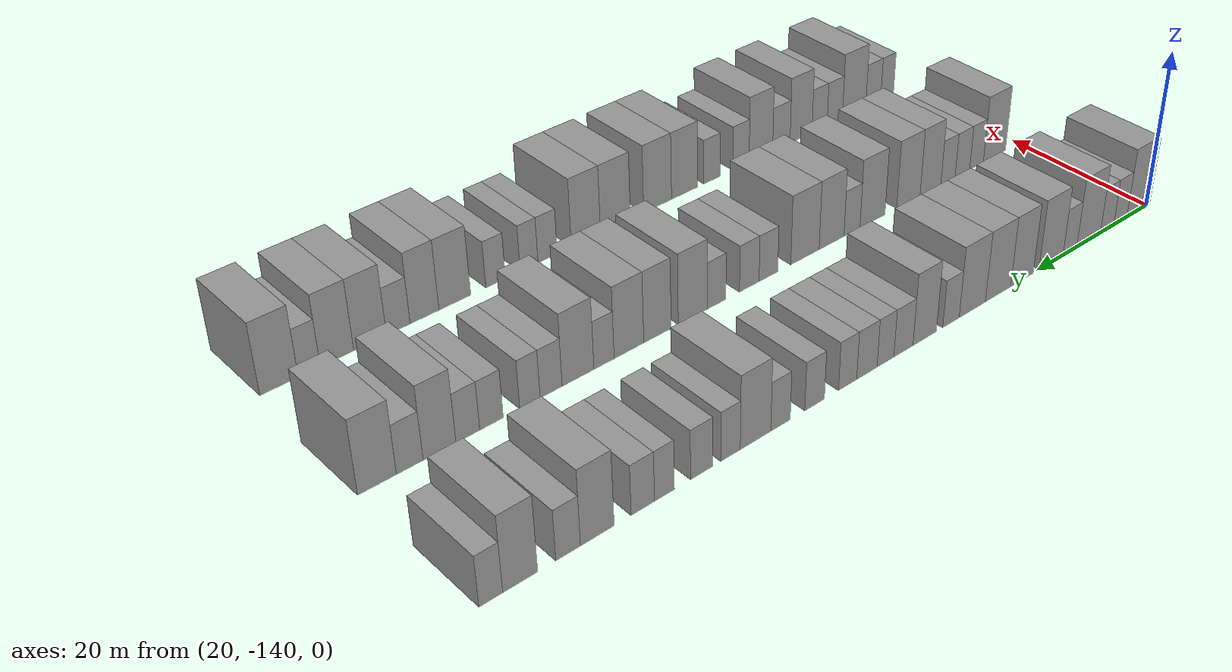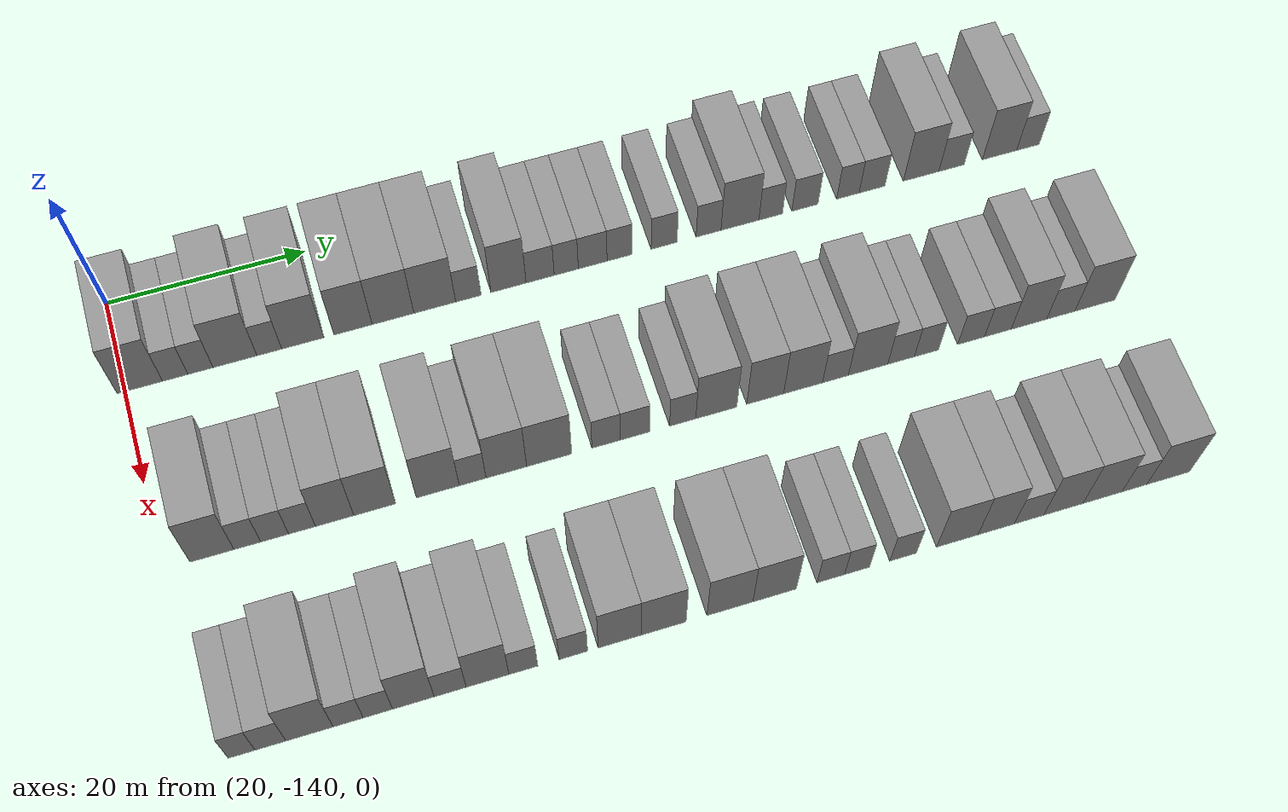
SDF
<sdf version="1.6">
 <world name="default">
  <model name="building_24">
   <static>1</static>
   <pose>25.0000 -138.5390 0 0.000000 0.000000 0.000000</pose>
   <link name="link">
    <pose>0 0 4.50 0 0 0</pose>
    <collision name="collision"><geometry><box><size>10.0000 4.4466 9.0000</size></box></geometry></collision>
    <visual name="visual">
     <cast_shadows>0</cast_shadows>
     <geometry><box><size>10.0000 4.4466 9.0000</size></box></geometry>
     <material>
      <script>
       <uri>model://grey_wall/materials/scripts</uri>
       <uri>model://grey_wall/materials/textures</uri>
       <name>vrc/grey_wall</name>
      </script>
     </material>
    </visual>
   </link>
  </model>
  <model name="building_25">
   <static>1</static>
   <pose>25.0000 -135.0715 0 0.000000 0.000000 0.000000</pose>
   <link name="link">
    <pose>0 0 3.00 0 0 0</pose>
    <collision name="collision"><geometry><box><size>10.0000 2.4883 6.0000</size></box></geometry></collision>
    <visual name="visual">
     <cast_shadows>0</cast_shadows>
     <geometry><box><size>10.0000 2.4883 6.0000</size></box></geometry>
     <material>
      <script>
       <uri>model://grey_wall/materials/scripts</uri>
       <uri>model://grey_wall/materials/textures</uri>
       <name>vrc/grey_wall</name>
      </script>
     </material>
    </visual>
   </link>
  </model>
  <model name="building_26">
   <static>1</static>
   <pose>25.0000 -132.5944 0 0.000000 0.000000 0.000000</pose>
   <link name="link">
    <pose>0 0 3.00 0 0 0</pose>
    <collision name="collision"><geometry><box><size>10.0000 2.4660 6.0000</size></box></geometry></collision>
    <visual name="visual">
     <cast_shadows>0</cast_shadows>
     <geometry><box><size>10.0000 2.4660 6.0000</size></box></geometry>
     <material>
      <script>
       <uri>model://grey_wall/materials/scripts</uri>
       <uri>model://grey_wall/materials/textures</uri>
       <name>vrc/grey_wall</name>
      </script>
     </material>
    </visual>
   </link>
  </model>
  <model name="building_27">
   <static>1</static>
   <pose>25.0000 -129.1966 0 0.000000 0.000000 0.000000</pose>
   <link name="link">
    <pose>0 0 4.50 0 0 0</pose>
    <collision name="collision"><geometry><box><size>10.0000 4.3295 9.0000</size></box></geometry></collision>
    <visual name="visual">
     <cast_shadows>0</cast_shadows>
     <geometry><box><size>10.0000 4.3295 9.0000</size></box></geometry>
     <material>
      <script>
       <uri>model://grey_wall/materials/scripts</uri>
       <uri>model://grey_wall/materials/textures</uri>
       <name>vrc/grey_wall</name>
      </script>
     </material>
    </visual>
   </link>
  </model>
  <model name="building_28">
   <static>1</static>
   <pose>25.0000 -125.7980 0 0.000000 0.000000 0.000000</pose>
   <link name="link">
    <pose>0 0 3.00 0 0 0</pose>
    <collision name="collision"><geometry><box><size>10.0000 2.4677 6.0000</size></box></geometry></collision>
    <visual name="visual">
     <cast_shadows>0</cast_shadows>
     <geometry><box><size>10.0000 2.4677 6.0000</size></box></geometry>
     <material>
      <script>
       <uri>model://grey_wall/materials/scripts</uri>
       <uri>model://grey_wall/materials/textures</uri>
       <name>vrc/grey_wall</name>
      </script>
     </material>
    </visual>
   </link>
  </model>
  <model name="building_29">
   <static>1</static>
   <pose>25.0000 -122.4533 0 0.000000 0.000000 0.000000</pose>
   <link name="link">
    <pose>0 0 4.50 0 0 0</pose>
    <collision name="collision"><geometry><box><size>10.0000 4.2217 9.0000</size></box></geometry></collision>
    <visual name="visual">
     <cast_shadows>0</cast_shadows>
     <geometry><box><size>10.0000 4.2217 9.0000</size></box></geometry>
     <material>
      <script>
       <uri>model://grey_wall/materials/scripts</uri>
       <uri>model://grey_wall/materials/textures</uri>
       <name>vrc/grey_wall</name>
      </script>
     </material>
    </visual>
   </link>
  </model>
  <model name="building_30">
   <static>1</static>
   <pose>25.0000 -117.4191 0 0.000000 0.000000 0.000000</pose>
   <link name="link">
    <pose>0 0 4.50 0 0 0</pose>
    <collision name="collision"><geometry><box><size>10.0000 3.8467 9.0000</size></box></geometry></collision>
    <visual name="visual">
     <cast_shadows>0</cast_shadows>
     <geometry><box><size>10.0000 3.8467 9.0000</size></box></geometry>
     <material>
      <script>
       <uri>model://grey_wall/materials/scripts</uri>
       <uri>model://grey_wall/materials/textures</uri>
       <name>vrc/grey_wall</name>
      </script>
     </material>
    </visual>
   </link>
  </model>
  <model name="building_31">
   <static>1</static>
   <pose>25.0000 -113.3922 0 0.000000 0.000000 0.000000</pose>
   <link name="link">
    <pose>0 0 4.50 0 0 0</pose>
    <collision name="collision"><geometry><box><size>10.0000 4.2071 9.0000</size></box></geometry></collision>
    <visual name="visual">
     <cast_shadows>0</cast_shadows>
     <geometry><box><size>10.0000 4.2071 9.0000</size></box></geometry>
     <material>
      <script>
       <uri>model://grey_wall/materials/scripts</uri>
       <uri>model://grey_wall/materials/textures</uri>
       <name>vrc/grey_wall</name>
      </script>
     </material>
    </visual>
   </link>
  </model>
  <model name="building_32">
   <static>1</static>
   <pose>25.0000 -109.1621 0 0.000000 0.000000 0.000000</pose>
   <link name="link">
    <pose>0 0 4.50 0 0 0</pose>
    <collision name="collision"><geometry><box><size>10.0000 4.2531 9.0000</size></box></geometry></collision>
    <visual name="visual">
     <cast_shadows>0</cast_shadows>
     <geometry><box><size>10.0000 4.2531 9.0000</size></box></geometry>
     <material>
      <script>
       <uri>model://grey_wall/materials/scripts</uri>
       <uri>model://grey_wall/materials/textures</uri>
       <name>vrc/grey_wall</name>
      </script>
     </material>
    </visual>
   </link>
  </model>
  <model name="building_33">
   <static>1</static>
   <pose>25.0000 -105.7331 0 0.000000 0.000000 0.000000</pose>
   <link name="link">
    <pose>0 0 3.00 0 0 0</pose>
    <collision name="collision"><geometry><box><size>10.0000 2.6048 6.0000</size></box></geometry></collision>
    <visual name="visual">
     <cast_shadows>0</cast_shadows>
     <geometry><box><size>10.0000 2.6048 6.0000</size></box></geometry>
     <material>
      <script>
       <uri>model://grey_wall/materials/scripts</uri>
       <uri>model://grey_wall/materials/textures</uri>
       <name>vrc/grey_wall</name>
      </script>
     </material>
    </visual>
   </link>
  </model>
  <model name="building_34">
   <static>1</static>
   <pose>25.0000 -101.6226 0 0.000000 0.000000 0.000000</pose>
   <link name="link">
    <pose>0 0 4.50 0 0 0</pose>
    <collision name="collision"><geometry><box><size>10.0000 3.6163 9.0000</size></box></geometry></collision>
    <visual name="visual">
     <cast_shadows>0</cast_shadows>
     <geometry><box><size>10.0000 3.6163 9.0000</size></box></geometry>
     <material>
      <script>
       <uri>model://grey_wall/materials/scripts</uri>
       <uri>model://grey_wall/materials/textures</uri>
       <name>vrc/grey_wall</name>
      </script>
     </material>
    </visual>
   </link>
  </model>
  <model name="building_35">
   <static>1</static>
   <pose>25.0000 -98.3615 0 0.000000 0.000000 0.000000</pose>
   <link name="link">
    <pose>0 0 3.00 0 0 0</pose>
    <collision name="collision"><geometry><box><size>10.0000 2.9057 6.0000</size></box></geometry></collision>
    <visual name="visual">
     <cast_shadows>0</cast_shadows>
     <geometry><box><size>10.0000 2.9057 6.0000</size></box></geometry>
     <material>
      <script>
       <uri>model://grey_wall/materials/scripts</uri>
       <uri>model://grey_wall/materials/textures</uri>
       <name>vrc/grey_wall</name>
      </script>
     </material>
    </visual>
   </link>
  </model>
  <model name="building_36">
   <static>1</static>
   <pose>25.0000 -95.6596 0 0.000000 0.000000 0.000000</pose>
   <link name="link">
    <pose>0 0 3.00 0 0 0</pose>
    <collision name="collision"><geometry><box><size>10.0000 2.4982 6.0000</size></box></geometry></collision>
    <visual name="visual">
     <cast_shadows>0</cast_shadows>
     <geometry><box><size>10.0000 2.4982 6.0000</size></box></geometry>
     <material>
      <script>
       <uri>model://grey_wall/materials/scripts</uri>
       <uri>model://grey_wall/materials/textures</uri>
       <name>vrc/grey_wall</name>
      </script>
     </material>
    </visual>
   </link>
  </model>
  <model name="building_37">
   <static>1</static>
   <pose>25.0000 -92.9173 0 0.000000 0.000000 0.000000</pose>
   <link name="link">
    <pose>0 0 3.00 0 0 0</pose>
    <collision name="collision"><geometry><box><size>10.0000 2.9864 6.0000</size></box></geometry></collision>
    <visual name="visual">
     <cast_shadows>0</cast_shadows>
     <geometry><box><size>10.0000 2.9864 6.0000</size></box></geometry>
     <material>
      <script>
       <uri>model://grey_wall/materials/scripts</uri>
       <uri>model://grey_wall/materials/textures</uri>
       <name>vrc/grey_wall</name>
      </script>
     </material>
    </visual>
   </link>
  </model>
  <model name="building_38">
   <static>1</static>
   <pose>25.0000 -90.1191 0 0.000000 0.000000 0.000000</pose>
   <link name="link">
    <pose>0 0 3.00 0 0 0</pose>
    <collision name="collision"><geometry><box><size>10.0000 2.6099 6.0000</size></box></geometry></collision>
    <visual name="visual">
     <cast_shadows>0</cast_shadows>
     <geometry><box><size>10.0000 2.6099 6.0000</size></box></geometry>
     <material>
      <script>
       <uri>model://grey_wall/materials/scripts</uri>
       <uri>model://grey_wall/materials/textures</uri>
       <name>vrc/grey_wall</name>
      </script>
     </material>
    </visual>
   </link>
  </model>
  <model name="building_39">
   <static>1</static>
   <pose>25.0000 -85.4486 0 0.000000 0.000000 0.000000</pose>
   <link name="link">
    <pose>0 0 3.00 0 0 0</pose>
    <collision name="collision"><geometry><box><size>10.0000 2.7311 6.0000</size></box></geometry></collision>
    <visual name="visual">
     <cast_shadows>0</cast_shadows>
     <geometry><box><size>10.0000 2.7311 6.0000</size></box></geometry>
     <material>
      <script>
       <uri>model://grey_wall/materials/scripts</uri>
       <uri>model://grey_wall/materials/textures</uri>
       <name>vrc/grey_wall</name>
      </script>
     </material>
    </visual>
   </link>
  </model>
  <model name="building_40">
   <static>1</static>
   <pose>25.0000 -80.7686 0 0.000000 0.000000 0.000000</pose>
   <link name="link">
    <pose>0 0 3.00 0 0 0</pose>
    <collision name="collision"><geometry><box><size>10.0000 2.6290 6.0000</size></box></geometry></collision>
    <visual name="visual">
     <cast_shadows>0</cast_shadows>
     <geometry><box><size>10.0000 2.6290 6.0000</size></box></geometry>
     <material>
      <script>
       <uri>model://grey_wall/materials/scripts</uri>
       <uri>model://grey_wall/materials/textures</uri>
       <name>vrc/grey_wall</name>
      </script>
     </material>
    </visual>
   </link>
  </model>
  <model name="building_41">
   <static>1</static>
   <pose>25.0000 -77.4401 0 0.000000 0.000000 0.000000</pose>
   <link name="link">
    <pose>0 0 4.50 0 0 0</pose>
    <collision name="collision"><geometry><box><size>10.0000 4.0280 9.0000</size></box></geometry></collision>
    <visual name="visual">
     <cast_shadows>0</cast_shadows>
     <geometry><box><size>10.0000 4.0280 9.0000</size></box></geometry>
     <material>
      <script>
       <uri>model://grey_wall/materials/scripts</uri>
       <uri>model://grey_wall/materials/textures</uri>
       <name>vrc/grey_wall</name>
      </script>
     </material>
    </visual>
   </link>
  </model>
  <model name="building_42">
   <static>1</static>
   <pose>25.0000 -74.1656 0 0.000000 0.000000 0.000000</pose>
   <link name="link">
    <pose>0 0 3.00 0 0 0</pose>
    <collision name="collision"><geometry><box><size>10.0000 2.5212 6.0000</size></box></geometry></collision>
    <visual name="visual">
     <cast_shadows>0</cast_shadows>
     <geometry><box><size>10.0000 2.5212 6.0000</size></box></geometry>
     <material>
      <script>
       <uri>model://grey_wall/materials/scripts</uri>
       <uri>model://grey_wall/materials/textures</uri>
       <name>vrc/grey_wall</name>
      </script>
     </material>
    </visual>
   </link>
  </model>
  <model name="building_43">
   <static>1</static>
   <pose>25.0000 -70.4947 0 0.000000 0.000000 0.000000</pose>
   <link name="link">
    <pose>0 0 3.00 0 0 0</pose>
    <collision name="collision"><geometry><box><size>10.0000 2.8206 6.0000</size></box></geometry></collision>
    <visual name="visual">
     <cast_shadows>0</cast_shadows>
     <geometry><box><size>10.0000 2.8206 6.0000</size></box></geometry>
     <material>
      <script>
       <uri>model://grey_wall/materials/scripts</uri>
       <uri>model://grey_wall/materials/textures</uri>
       <name>vrc/grey_wall</name>
      </script>
     </material>
    </visual>
   </link>
  </model>
  <model name="building_44">
   <static>1</static>
   <pose>25.0000 -65.8738 0 0.000000 0.000000 0.000000</pose>
   <link name="link">
    <pose>0 0 3.00 0 0 0</pose>
    <collision name="collision"><geometry><box><size>10.0000 2.4212 6.0000</size></box></geometry></collision>
    <visual name="visual">
     <cast_shadows>0</cast_shadows>
     <geometry><box><size>10.0000 2.4212 6.0000</size></box></geometry>
     <material>
      <script>
       <uri>model://grey_wall/materials/scripts</uri>
       <uri>model://grey_wall/materials/textures</uri>
       <name>vrc/grey_wall</name>
      </script>
     </material>
    </visual>
   </link>
  </model>
  <model name="building_45">
   <static>1</static>
   <pose>25.0000 -63.2611 0 0.000000 0.000000 0.000000</pose>
   <link name="link">
    <pose>0 0 3.00 0 0 0</pose>
    <collision name="collision"><geometry><box><size>10.0000 2.8042 6.0000</size></box></geometry></collision>
    <visual name="visual">
     <cast_shadows>0</cast_shadows>
     <geometry><box><size>10.0000 2.8042 6.0000</size></box></geometry>
     <material>
      <script>
       <uri>model://grey_wall/materials/scripts</uri>
       <uri>model://grey_wall/materials/textures</uri>
       <name>vrc/grey_wall</name>
      </script>
     </material>
    </visual>
   </link>
  </model>
  <model name="building_46">
   <static>1</static>
   <pose>25.0000 -57.9192 0 0.000000 0.000000 0.000000</pose>
   <link name="link">
    <pose>0 0 4.50 0 0 0</pose>
    <collision name="collision"><geometry><box><size>10.0000 3.8795 9.0000</size></box></geometry></collision>
    <visual name="visual">
     <cast_shadows>0</cast_shadows>
     <geometry><box><size>10.0000 3.8795 9.0000</size></box></geometry>
     <material>
      <script>
       <uri>model://grey_wall/materials/scripts</uri>
       <uri>model://grey_wall/materials/textures</uri>
       <name>vrc/grey_wall</name>
      </script>
     </material>
    </visual>
   </link>
  </model>
  <model name="building_47">
   <static>1</static>
   <pose>25.0000 -54.5918 0 0.000000 0.000000 0.000000</pose>
   <link name="link">
    <pose>0 0 3.00 0 0 0</pose>
    <collision name="collision"><geometry><box><size>10.0000 2.7754 6.0000</size></box></geometry></collision>
    <visual name="visual">
     <cast_shadows>0</cast_shadows>
     <geometry><box><size>10.0000 2.7754 6.0000</size></box></geometry>
     <material>
      <script>
       <uri>model://grey_wall/materials/scripts</uri>
       <uri>model://grey_wall/materials/textures</uri>
       <name>vrc/grey_wall</name>
      </script>
     </material>
    </visual>
   </link>
  </model>
  <model name="building_48">
   <static>1</static>
   <pose>25.0000 -49.3145 0 0.000000 0.000000 0.000000</pose>
   <link name="link">
    <pose>0 0 4.50 0 0 0</pose>
    <collision name="collision"><geometry><box><size>10.0000 3.7791 9.0000</size></box></geometry></collision>
    <visual name="visual">
     <cast_shadows>0</cast_shadows>
     <geometry><box><size>10.0000 3.7791 9.0000</size></box></geometry>
     <material>
      <script>
       <uri>model://grey_wall/materials/scripts</uri>
       <uri>model://grey_wall/materials/textures</uri>
       <name>vrc/grey_wall</name>
      </script>
     </material>
    </visual>
   </link>
  </model>
  <model name="building_49">
   <static>1</static>
   <pose>25.0000 -46.1671 0 0.000000 0.000000 0.000000</pose>
   <link name="link">
    <pose>0 0 3.00 0 0 0</pose>
    <collision name="collision"><geometry><box><size>10.0000 2.5156 6.0000</size></box></geometry></collision>
    <visual name="visual">
     <cast_shadows>0</cast_shadows>
     <geometry><box><size>10.0000 2.5156 6.0000</size></box></geometry>
     <material>
      <script>
       <uri>model://grey_wall/materials/scripts</uri>
       <uri>model://grey_wall/materials/textures</uri>
       <name>vrc/grey_wall</name>
      </script>
     </material>
    </visual>
   </link>
  </model>
  <model name="building_148">
   <static>1</static>
   <pose>44.0000 -135.3502 0 0.000000 0.000000 0.000000</pose>
   <link name="link">
    <pose>0 0 4.50 0 0 0</pose>
    <collision name="collision"><geometry><box><size>10.0000 4.1385 9.0000</size></box></geometry></collision>
    <visual name="visual">
     <cast_shadows>0</cast_shadows>
     <geometry><box><size>10.0000 4.1385 9.0000</size></box></geometry>
     <material>
      <script>
       <uri>model://grey_wall/materials/scripts</uri>
       <uri>model://grey_wall/materials/textures</uri>
       <name>vrc/grey_wall</name>
      </script>
     </material>
    </visual>
   </link>
  </model>
  <model name="building_149">
   <static>1</static>
   <pose>44.0000 -132.0215 0 0.000000 0.000000 0.000000</pose>
   <link name="link">
    <pose>0 0 3.00 0 0 0</pose>
    <collision name="collision"><geometry><box><size>10.0000 2.5189 6.0000</size></box></geometry></collision>
    <visual name="visual">
     <cast_shadows>0</cast_shadows>
     <geometry><box><size>10.0000 2.5189 6.0000</size></box></geometry>
     <material>
      <script>
       <uri>model://grey_wall/materials/scripts</uri>
       <uri>model://grey_wall/materials/textures</uri>
       <name>vrc/grey_wall</name>
      </script>
     </material>
    </visual>
   </link>
  </model>
  <model name="building_150">
   <static>1</static>
   <pose>44.0000 -129.4367 0 0.000000 0.000000 0.000000</pose>
   <link name="link">
    <pose>0 0 3.00 0 0 0</pose>
    <collision name="collision"><geometry><box><size>10.0000 2.6507 6.0000</size></box></geometry></collision>
    <visual name="visual">
     <cast_shadows>0</cast_shadows>
     <geometry><box><size>10.0000 2.6507 6.0000</size></box></geometry>
     <material>
      <script>
       <uri>model://grey_wall/materials/scripts</uri>
       <uri>model://grey_wall/materials/textures</uri>
       <name>vrc/grey_wall</name>
      </script>
     </material>
    </visual>
   </link>
  </model>
  <model name="building_151">
   <static>1</static>
   <pose>44.0000 -126.8342 0 0.000000 0.000000 0.000000</pose>
   <link name="link">
    <pose>0 0 3.00 0 0 0</pose>
    <collision name="collision"><geometry><box><size>10.0000 2.5543 6.0000</size></box></geometry></collision>
    <visual name="visual">
     <cast_shadows>0</cast_shadows>
     <geometry><box><size>10.0000 2.5543 6.0000</size></box></geometry>
     <material>
      <script>
       <uri>model://grey_wall/materials/scripts</uri>
       <uri>model://grey_wall/materials/textures</uri>
       <name>vrc/grey_wall</name>
      </script>
     </material>
    </visual>
   </link>
  </model>
  <model name="building_152">
   <static>1</static>
   <pose>44.0000 -123.7245 0 0.000000 0.000000 0.000000</pose>
   <link name="link">
    <pose>0 0 4.50 0 0 0</pose>
    <collision name="collision"><geometry><box><size>10.0000 3.6650 9.0000</size></box></geometry></collision>
    <visual name="visual">
     <cast_shadows>0</cast_shadows>
     <geometry><box><size>10.0000 3.6650 9.0000</size></box></geometry>
     <material>
      <script>
       <uri>model://grey_wall/materials/scripts</uri>
       <uri>model://grey_wall/materials/textures</uri>
       <name>vrc/grey_wall</name>
      </script>
     </material>
    </visual>
   </link>
  </model>
  <model name="building_153">
   <static>1</static>
   <pose>44.0000 -119.8804 0 0.000000 0.000000 0.000000</pose>
   <link name="link">
    <pose>0 0 4.50 0 0 0</pose>
    <collision name="collision"><geometry><box><size>10.0000 4.0232 9.0000</size></box></geometry></collision>
    <visual name="visual">
     <cast_shadows>0</cast_shadows>
     <geometry><box><size>10.0000 4.0232 9.0000</size></box></geometry>
     <material>
      <script>
       <uri>model://grey_wall/materials/scripts</uri>
       <uri>model://grey_wall/materials/textures</uri>
       <name>vrc/grey_wall</name>
      </script>
     </material>
    </visual>
   </link>
  </model>
  <model name="building_154">
   <static>1</static>
   <pose>44.0000 -113.7887 0 0.000000 0.000000 0.000000</pose>
   <link name="link">
    <pose>0 0 4.50 0 0 0</pose>
    <collision name="collision"><geometry><box><size>10.0000 4.1601 9.0000</size></box></geometry></collision>
    <visual name="visual">
     <cast_shadows>0</cast_shadows>
     <geometry><box><size>10.0000 4.1601 9.0000</size></box></geometry>
     <material>
      <script>
       <uri>model://grey_wall/materials/scripts</uri>
       <uri>model://grey_wall/materials/textures</uri>
       <name>vrc/grey_wall</name>
      </script>
     </material>
    </visual>
   </link>
  </model>
  <model name="building_155">
   <static>1</static>
   <pose>44.0000 -110.4009 0 0.000000 0.000000 0.000000</pose>
   <link name="link">
    <pose>0 0 3.00 0 0 0</pose>
    <collision name="collision"><geometry><box><size>10.0000 2.6155 6.0000</size></box></geometry></collision>
    <visual name="visual">
     <cast_shadows>0</cast_shadows>
     <geometry><box><size>10.0000 2.6155 6.0000</size></box></geometry>
     <material>
      <script>
       <uri>model://grey_wall/materials/scripts</uri>
       <uri>model://grey_wall/materials/textures</uri>
       <name>vrc/grey_wall</name>
      </script>
     </material>
    </visual>
   </link>
  </model>
  <model name="building_156">
   <static>1</static>
   <pose>44.0000 -107.1032 0 0.000000 0.000000 0.000000</pose>
   <link name="link">
    <pose>0 0 4.50 0 0 0</pose>
    <collision name="collision"><geometry><box><size>10.0000 3.9799 9.0000</size></box></geometry></collision>
    <visual name="visual">
     <cast_shadows>0</cast_shadows>
     <geometry><box><size>10.0000 3.9799 9.0000</size></box></geometry>
     <material>
      <script>
       <uri>model://grey_wall/materials/scripts</uri>
       <uri>model://grey_wall/materials/textures</uri>
       <name>vrc/grey_wall</name>
      </script>
     </material>
    </visual>
   </link>
  </model>
  <model name="building_157">
   <static>1</static>
   <pose>44.0000 -102.8934 0 0.000000 0.000000 0.000000</pose>
   <link name="link">
    <pose>0 0 4.50 0 0 0</pose>
    <collision name="collision"><geometry><box><size>10.0000 4.4398 9.0000</size></box></geometry></collision>
    <visual name="visual">
     <cast_shadows>0</cast_shadows>
     <geometry><box><size>10.0000 4.4398 9.0000</size></box></geometry>
     <material>
      <script>
       <uri>model://grey_wall/materials/scripts</uri>
       <uri>model://grey_wall/materials/textures</uri>
       <name>vrc/grey_wall</name>
      </script>
     </material>
    </visual>
   </link>
  </model>
  <model name="building_158">
   <static>1</static>
   <pose>44.0000 -97.2598 0 0.000000 0.000000 0.000000</pose>
   <link name="link">
    <pose>0 0 3.00 0 0 0</pose>
    <collision name="collision"><geometry><box><size>10.0000 2.8273 6.0000</size></box></geometry></collision>
    <visual name="visual">
     <cast_shadows>0</cast_shadows>
     <geometry><box><size>10.0000 2.8273 6.0000</size></box></geometry>
     <material>
      <script>
       <uri>model://grey_wall/materials/scripts</uri>
       <uri>model://grey_wall/materials/textures</uri>
       <name>vrc/grey_wall</name>
      </script>
     </material>
    </visual>
   </link>
  </model>
  <model name="building_159">
   <static>1</static>
   <pose>44.0000 -94.3902 0 0.000000 0.000000 0.000000</pose>
   <link name="link">
    <pose>0 0 3.00 0 0 0</pose>
    <collision name="collision"><geometry><box><size>10.0000 2.9119 6.0000</size></box></geometry></collision>
    <visual name="visual">
     <cast_shadows>0</cast_shadows>
     <geometry><box><size>10.0000 2.9119 6.0000</size></box></geometry>
     <material>
      <script>
       <uri>model://grey_wall/materials/scripts</uri>
       <uri>model://grey_wall/materials/textures</uri>
       <name>vrc/grey_wall</name>
      </script>
     </material>
    </visual>
   </link>
  </model>
  <model name="building_160">
   <static>1</static>
   <pose>44.0000 -89.6149 0 0.000000 0.000000 0.000000</pose>
   <link name="link">
    <pose>0 0 3.00 0 0 0</pose>
    <collision name="collision"><geometry><box><size>10.0000 2.6387 6.0000</size></box></geometry></collision>
    <visual name="visual">
     <cast_shadows>0</cast_shadows>
     <geometry><box><size>10.0000 2.6387 6.0000</size></box></geometry>
     <material>
      <script>
       <uri>model://grey_wall/materials/scripts</uri>
       <uri>model://grey_wall/materials/textures</uri>
       <name>vrc/grey_wall</name>
      </script>
     </material>
    </visual>
   </link>
  </model>
  <model name="building_161">
   <static>1</static>
   <pose>44.0000 -86.2224 0 0.000000 0.000000 0.000000</pose>
   <link name="link">
    <pose>0 0 4.50 0 0 0</pose>
    <collision name="collision"><geometry><box><size>10.0000 4.1462 9.0000</size></box></geometry></collision>
    <visual name="visual">
     <cast_shadows>0</cast_shadows>
     <geometry><box><size>10.0000 4.1462 9.0000</size></box></geometry>
     <material>
      <script>
       <uri>model://grey_wall/materials/scripts</uri>
       <uri>model://grey_wall/materials/textures</uri>
       <name>vrc/grey_wall</name>
      </script>
     </material>
    </visual>
   </link>
  </model>
  <model name="building_162">
   <static>1</static>
   <pose>44.0000 -81.2729 0 0.000000 0.000000 0.000000</pose>
   <link name="link">
    <pose>0 0 4.50 0 0 0</pose>
    <collision name="collision"><geometry><box><size>10.0000 3.7529 9.0000</size></box></geometry></collision>
    <visual name="visual">
     <cast_shadows>0</cast_shadows>
     <geometry><box><size>10.0000 3.7529 9.0000</size></box></geometry>
     <material>
      <script>
       <uri>model://grey_wall/materials/scripts</uri>
       <uri>model://grey_wall/materials/textures</uri>
       <name>vrc/grey_wall</name>
      </script>
     </material>
    </visual>
   </link>
  </model>
  <model name="building_163">
   <static>1</static>
   <pose>44.0000 -77.4085 0 0.000000 0.000000 0.000000</pose>
   <link name="link">
    <pose>0 0 4.50 0 0 0</pose>
    <collision name="collision"><geometry><box><size>10.0000 3.9760 9.0000</size></box></geometry></collision>
    <visual name="visual">
     <cast_shadows>0</cast_shadows>
     <geometry><box><size>10.0000 3.9760 9.0000</size></box></geometry>
     <material>
      <script>
       <uri>model://grey_wall/materials/scripts</uri>
       <uri>model://grey_wall/materials/textures</uri>
       <name>vrc/grey_wall</name>
      </script>
     </material>
    </visual>
   </link>
  </model>
  <model name="building_164">
   <static>1</static>
   <pose>44.0000 -74.0968 0 0.000000 0.000000 0.000000</pose>
   <link name="link">
    <pose>0 0 3.00 0 0 0</pose>
    <collision name="collision"><geometry><box><size>10.0000 2.6475 6.0000</size></box></geometry></collision>
    <visual name="visual">
     <cast_shadows>0</cast_shadows>
     <geometry><box><size>10.0000 2.6475 6.0000</size></box></geometry>
     <material>
      <script>
       <uri>model://grey_wall/materials/scripts</uri>
       <uri>model://grey_wall/materials/textures</uri>
       <name>vrc/grey_wall</name>
      </script>
     </material>
    </visual>
   </link>
  </model>
  <model name="building_165">
   <static>1</static>
   <pose>44.0000 -70.7334 0 0.000000 0.000000 0.000000</pose>
   <link name="link">
    <pose>0 0 4.50 0 0 0</pose>
    <collision name="collision"><geometry><box><size>10.0000 4.0792 9.0000</size></box></geometry></collision>
    <visual name="visual">
     <cast_shadows>0</cast_shadows>
     <geometry><box><size>10.0000 4.0792 9.0000</size></box></geometry>
     <material>
      <script>
       <uri>model://grey_wall/materials/scripts</uri>
       <uri>model://grey_wall/materials/textures</uri>
       <name>vrc/grey_wall</name>
      </script>
     </material>
    </visual>
   </link>
  </model>
  <model name="building_166">
   <static>1</static>
   <pose>44.0000 -67.3080 0 0.000000 0.000000 0.000000</pose>
   <link name="link">
    <pose>0 0 3.00 0 0 0</pose>
    <collision name="collision"><geometry><box><size>10.0000 2.7715 6.0000</size></box></geometry></collision>
    <visual name="visual">
     <cast_shadows>0</cast_shadows>
     <geometry><box><size>10.0000 2.7715 6.0000</size></box></geometry>
     <material>
      <script>
       <uri>model://grey_wall/materials/scripts</uri>
       <uri>model://grey_wall/materials/textures</uri>
       <name>vrc/grey_wall</name>
      </script>
     </material>
    </visual>
   </link>
  </model>
  <model name="building_167">
   <static>1</static>
   <pose>44.0000 -64.6648 0 0.000000 0.000000 0.000000</pose>
   <link name="link">
    <pose>0 0 3.00 0 0 0</pose>
    <collision name="collision"><geometry><box><size>10.0000 2.5149 6.0000</size></box></geometry></collision>
    <visual name="visual">
     <cast_shadows>0</cast_shadows>
     <geometry><box><size>10.0000 2.5149 6.0000</size></box></geometry>
     <material>
      <script>
       <uri>model://grey_wall/materials/scripts</uri>
       <uri>model://grey_wall/materials/textures</uri>
       <name>vrc/grey_wall</name>
      </script>
     </material>
    </visual>
   </link>
  </model>
  <model name="building_168">
   <static>1</static>
   <pose>44.0000 -60.0041 0 0.000000 0.000000 0.000000</pose>
   <link name="link">
    <pose>0 0 3.00 0 0 0</pose>
    <collision name="collision"><geometry><box><size>10.0000 2.8065 6.0000</size></box></geometry></collision>
    <visual name="visual">
     <cast_shadows>0</cast_shadows>
     <geometry><box><size>10.0000 2.8065 6.0000</size></box></geometry>
     <material>
      <script>
       <uri>model://grey_wall/materials/scripts</uri>
       <uri>model://grey_wall/materials/textures</uri>
       <name>vrc/grey_wall</name>
      </script>
     </material>
    </visual>
   </link>
  </model>
  <model name="building_169">
   <static>1</static>
   <pose>44.0000 -57.1997 0 0.000000 0.000000 0.000000</pose>
   <link name="link">
    <pose>0 0 3.00 0 0 0</pose>
    <collision name="collision"><geometry><box><size>10.0000 2.8023 6.0000</size></box></geometry></collision>
    <visual name="visual">
     <cast_shadows>0</cast_shadows>
     <geometry><box><size>10.0000 2.8023 6.0000</size></box></geometry>
     <material>
      <script>
       <uri>model://grey_wall/materials/scripts</uri>
       <uri>model://grey_wall/materials/textures</uri>
       <name>vrc/grey_wall</name>
      </script>
     </material>
    </visual>
   </link>
  </model>
  <model name="building_170">
   <static>1</static>
   <pose>44.0000 -53.9188 0 0.000000 0.000000 0.000000</pose>
   <link name="link">
    <pose>0 0 4.50 0 0 0</pose>
    <collision name="collision"><geometry><box><size>10.0000 3.7595 9.0000</size></box></geometry></collision>
    <visual name="visual">
     <cast_shadows>0</cast_shadows>
     <geometry><box><size>10.0000 3.7595 9.0000</size></box></geometry>
     <material>
      <script>
       <uri>model://grey_wall/materials/scripts</uri>
       <uri>model://grey_wall/materials/textures</uri>
       <name>vrc/grey_wall</name>
      </script>
     </material>
    </visual>
   </link>
  </model>
  <model name="building_171">
   <static>1</static>
   <pose>44.0000 -50.5417 0 0.000000 0.000000 0.000000</pose>
   <link name="link">
    <pose>0 0 3.00 0 0 0</pose>
    <collision name="collision"><geometry><box><size>10.0000 2.9947 6.0000</size></box></geometry></collision>
    <visual name="visual">
     <cast_shadows>0</cast_shadows>
     <geometry><box><size>10.0000 2.9947 6.0000</size></box></geometry>
     <material>
      <script>
       <uri>model://grey_wall/materials/scripts</uri>
       <uri>model://grey_wall/materials/textures</uri>
       <name>vrc/grey_wall</name>
      </script>
     </material>
    </visual>
   </link>
  </model>
  <model name="building_172">
   <static>1</static>
   <pose>44.0000 -46.9150 0 0.000000 0.000000 0.000000</pose>
   <link name="link">
    <pose>0 0 4.50 0 0 0</pose>
    <collision name="collision"><geometry><box><size>10.0000 4.2586 9.0000</size></box></geometry></collision>
    <visual name="visual">
     <cast_shadows>0</cast_shadows>
     <geometry><box><size>10.0000 4.2586 9.0000</size></box></geometry>
     <material>
      <script>
       <uri>model://grey_wall/materials/scripts</uri>
       <uri>model://grey_wall/materials/textures</uri>
       <name>vrc/grey_wall</name>
      </script>
     </material>
    </visual>
   </link>
  </model>
  <model name="building_277">
   <static>1</static>
   <pose>63.0000 -136.5740 0 0.000000 0.000000 0.000000</pose>
   <link name="link">
    <pose>0 0 3.00 0 0 0</pose>
    <collision name="collision"><geometry><box><size>10.0000 2.4103 6.0000</size></box></geometry></collision>
    <visual name="visual">
     <cast_shadows>0</cast_shadows>
     <geometry><box><size>10.0000 2.4103 6.0000</size></box></geometry>
     <material>
      <script>
       <uri>model://grey_wall/materials/scripts</uri>
       <uri>model://grey_wall/materials/textures</uri>
       <name>vrc/grey_wall</name>
      </script>
     </material>
    </visual>
   </link>
  </model>
  <model name="building_278">
   <static>1</static>
   <pose>63.0000 -133.9805 0 0.000000 0.000000 0.000000</pose>
   <link name="link">
    <pose>0 0 3.00 0 0 0</pose>
    <collision name="collision"><geometry><box><size>10.0000 2.7767 6.0000</size></box></geometry></collision>
    <visual name="visual">
     <cast_shadows>0</cast_shadows>
     <geometry><box><size>10.0000 2.7767 6.0000</size></box></geometry>
     <material>
      <script>
       <uri>model://grey_wall/materials/scripts</uri>
       <uri>model://grey_wall/materials/textures</uri>
       <name>vrc/grey_wall</name>
      </script>
     </material>
    </visual>
   </link>
  </model>
  <model name="building_279">
   <static>1</static>
   <pose>63.0000 -130.4479 0 0.000000 0.000000 0.000000</pose>
   <link name="link">
    <pose>0 0 4.50 0 0 0</pose>
    <collision name="collision"><geometry><box><size>10.0000 4.2885 9.0000</size></box></geometry></collision>
    <visual name="visual">
     <cast_shadows>0</cast_shadows>
     <geometry><box><size>10.0000 4.2885 9.0000</size></box></geometry>
     <material>
      <script>
       <uri>model://grey_wall/materials/scripts</uri>
       <uri>model://grey_wall/materials/textures</uri>
       <name>vrc/grey_wall</name>
      </script>
     </material>
    </visual>
   </link>
  </model>
  <model name="building_280">
   <static>1</static>
   <pose>63.0000 -126.9347 0 0.000000 0.000000 0.000000</pose>
   <link name="link">
    <pose>0 0 3.00 0 0 0</pose>
    <collision name="collision"><geometry><box><size>10.0000 2.7380 6.0000</size></box></geometry></collision>
    <visual name="visual">
     <cast_shadows>0</cast_shadows>
     <geometry><box><size>10.0000 2.7380 6.0000</size></box></geometry>
     <material>
      <script>
       <uri>model://grey_wall/materials/scripts</uri>
       <uri>model://grey_wall/materials/textures</uri>
       <name>vrc/grey_wall</name>
      </script>
     </material>
    </visual>
   </link>
  </model>
  <model name="building_281">
   <static>1</static>
   <pose>63.0000 -124.2241 0 0.000000 0.000000 0.000000</pose>
   <link name="link">
    <pose>0 0 3.00 0 0 0</pose>
    <collision name="collision"><geometry><box><size>10.0000 2.6832 6.0000</size></box></geometry></collision>
    <visual name="visual">
     <cast_shadows>0</cast_shadows>
     <geometry><box><size>10.0000 2.6832 6.0000</size></box></geometry>
     <material>
      <script>
       <uri>model://grey_wall/materials/scripts</uri>
       <uri>model://grey_wall/materials/textures</uri>
       <name>vrc/grey_wall</name>
      </script>
     </material>
    </visual>
   </link>
  </model>
  <model name="building_282">
   <static>1</static>
   <pose>63.0000 -120.9701 0 0.000000 0.000000 0.000000</pose>
   <link name="link">
    <pose>0 0 4.50 0 0 0</pose>
    <collision name="collision"><geometry><box><size>10.0000 3.8248 9.0000</size></box></geometry></collision>
    <visual name="visual">
     <cast_shadows>0</cast_shadows>
     <geometry><box><size>10.0000 3.8248 9.0000</size></box></geometry>
     <material>
      <script>
       <uri>model://grey_wall/materials/scripts</uri>
       <uri>model://grey_wall/materials/textures</uri>
       <name>vrc/grey_wall</name>
      </script>
     </material>
    </visual>
   </link>
  </model>
  <model name="building_283">
   <static>1</static>
   <pose>63.0000 -117.5723 0 0.000000 0.000000 0.000000</pose>
   <link name="link">
    <pose>0 0 3.00 0 0 0</pose>
    <collision name="collision"><geometry><box><size>10.0000 2.9707 6.0000</size></box></geometry></collision>
    <visual name="visual">
     <cast_shadows>0</cast_shadows>
     <geometry><box><size>10.0000 2.9707 6.0000</size></box></geometry>
     <material>
      <script>
       <uri>model://grey_wall/materials/scripts</uri>
       <uri>model://grey_wall/materials/textures</uri>
       <name>vrc/grey_wall</name>
      </script>
     </material>
    </visual>
   </link>
  </model>
  <model name="building_284">
   <static>1</static>
   <pose>63.0000 -114.1075 0 0.000000 0.000000 0.000000</pose>
   <link name="link">
    <pose>0 0 4.50 0 0 0</pose>
    <collision name="collision"><geometry><box><size>10.0000 3.9590 9.0000</size></box></geometry></collision>
    <visual name="visual">
     <cast_shadows>0</cast_shadows>
     <geometry><box><size>10.0000 3.9590 9.0000</size></box></geometry>
     <material>
      <script>
       <uri>model://grey_wall/materials/scripts</uri>
       <uri>model://grey_wall/materials/textures</uri>
       <name>vrc/grey_wall</name>
      </script>
     </material>
    </visual>
   </link>
  </model>
  <model name="building_285">
   <static>1</static>
   <pose>63.0000 -110.7795 0 0.000000 0.000000 0.000000</pose>
   <link name="link">
    <pose>0 0 3.00 0 0 0</pose>
    <collision name="collision"><geometry><box><size>10.0000 2.6970 6.0000</size></box></geometry></collision>
    <visual name="visual">
     <cast_shadows>0</cast_shadows>
     <geometry><box><size>10.0000 2.6970 6.0000</size></box></geometry>
     <material>
      <script>
       <uri>model://grey_wall/materials/scripts</uri>
       <uri>model://grey_wall/materials/textures</uri>
       <name>vrc/grey_wall</name>
      </script>
     </material>
    </visual>
   </link>
  </model>
  <model name="building_286">
   <static>1</static>
   <pose>63.0000 -106.0964 0 0.000000 0.000000 0.000000</pose>
   <link name="link">
    <pose>0 0 3.00 0 0 0</pose>
    <collision name="collision"><geometry><box><size>10.0000 2.6691 6.0000</size></box></geometry></collision>
    <visual name="visual">
     <cast_shadows>0</cast_shadows>
     <geometry><box><size>10.0000 2.6691 6.0000</size></box></geometry>
     <material>
      <script>
       <uri>model://grey_wall/materials/scripts</uri>
       <uri>model://grey_wall/materials/textures</uri>
       <name>vrc/grey_wall</name>
      </script>
     </material>
    </visual>
   </link>
  </model>
  <model name="building_287">
   <static>1</static>
   <pose>63.0000 -101.7178 0 0.000000 0.000000 0.000000</pose>
   <link name="link">
    <pose>0 0 4.50 0 0 0</pose>
    <collision name="collision"><geometry><box><size>10.0000 4.0882 9.0000</size></box></geometry></collision>
    <visual name="visual">
     <cast_shadows>0</cast_shadows>
     <geometry><box><size>10.0000 4.0882 9.0000</size></box></geometry>
     <material>
      <script>
       <uri>model://grey_wall/materials/scripts</uri>
       <uri>model://grey_wall/materials/textures</uri>
       <name>vrc/grey_wall</name>
      </script>
     </material>
    </visual>
   </link>
  </model>
  <model name="building_288">
   <static>1</static>
   <pose>63.0000 -97.5411 0 0.000000 0.000000 0.000000</pose>
   <link name="link">
    <pose>0 0 4.50 0 0 0</pose>
    <collision name="collision"><geometry><box><size>10.0000 4.2651 9.0000</size></box></geometry></collision>
    <visual name="visual">
     <cast_shadows>0</cast_shadows>
     <geometry><box><size>10.0000 4.2651 9.0000</size></box></geometry>
     <material>
      <script>
       <uri>model://grey_wall/materials/scripts</uri>
       <uri>model://grey_wall/materials/textures</uri>
       <name>vrc/grey_wall</name>
      </script>
     </material>
    </visual>
   </link>
  </model>
  <model name="building_289">
   <static>1</static>
   <pose>63.0000 -91.1947 0 0.000000 0.000000 0.000000</pose>
   <link name="link">
    <pose>0 0 4.50 0 0 0</pose>
    <collision name="collision"><geometry><box><size>10.0000 4.4277 9.0000</size></box></geometry></collision>
    <visual name="visual">
     <cast_shadows>0</cast_shadows>
     <geometry><box><size>10.0000 4.4277 9.0000</size></box></geometry>
     <material>
      <script>
       <uri>model://grey_wall/materials/scripts</uri>
       <uri>model://grey_wall/materials/textures</uri>
       <name>vrc/grey_wall</name>
      </script>
     </material>
    </visual>
   </link>
  </model>
  <model name="building_290">
   <static>1</static>
   <pose>63.0000 -86.8741 0 0.000000 0.000000 0.000000</pose>
   <link name="link">
    <pose>0 0 4.50 0 0 0</pose>
    <collision name="collision"><geometry><box><size>10.0000 4.2136 9.0000</size></box></geometry></collision>
    <visual name="visual">
     <cast_shadows>0</cast_shadows>
     <geometry><box><size>10.0000 4.2136 9.0000</size></box></geometry>
     <material>
      <script>
       <uri>model://grey_wall/materials/scripts</uri>
       <uri>model://grey_wall/materials/textures</uri>
       <name>vrc/grey_wall</name>
      </script>
     </material>
    </visual>
   </link>
  </model>
  <model name="building_291">
   <static>1</static>
   <pose>63.0000 -81.4252 0 0.000000 0.000000 0.000000</pose>
   <link name="link">
    <pose>0 0 3.00 0 0 0</pose>
    <collision name="collision"><geometry><box><size>10.0000 2.6843 6.0000</size></box></geometry></collision>
    <visual name="visual">
     <cast_shadows>0</cast_shadows>
     <geometry><box><size>10.0000 2.6843 6.0000</size></box></geometry>
     <material>
      <script>
       <uri>model://grey_wall/materials/scripts</uri>
       <uri>model://grey_wall/materials/textures</uri>
       <name>vrc/grey_wall</name>
      </script>
     </material>
    </visual>
   </link>
  </model>
  <model name="building_292">
   <static>1</static>
   <pose>63.0000 -78.8555 0 0.000000 0.000000 0.000000</pose>
   <link name="link">
    <pose>0 0 3.00 0 0 0</pose>
    <collision name="collision"><geometry><box><size>10.0000 2.4550 6.0000</size></box></geometry></collision>
    <visual name="visual">
     <cast_shadows>0</cast_shadows>
     <geometry><box><size>10.0000 2.4550 6.0000</size></box></geometry>
     <material>
      <script>
       <uri>model://grey_wall/materials/scripts</uri>
       <uri>model://grey_wall/materials/textures</uri>
       <name>vrc/grey_wall</name>
      </script>
     </material>
    </visual>
   </link>
  </model>
  <model name="building_293">
   <static>1</static>
   <pose>63.0000 -74.3152 0 0.000000 0.000000 0.000000</pose>
   <link name="link">
    <pose>0 0 3.00 0 0 0</pose>
    <collision name="collision"><geometry><box><size>10.0000 2.6257 6.0000</size></box></geometry></collision>
    <visual name="visual">
     <cast_shadows>0</cast_shadows>
     <geometry><box><size>10.0000 2.6257 6.0000</size></box></geometry>
     <material>
      <script>
       <uri>model://grey_wall/materials/scripts</uri>
       <uri>model://grey_wall/materials/textures</uri>
       <name>vrc/grey_wall</name>
      </script>
     </material>
    </visual>
   </link>
  </model>
  <model name="building_294">
   <static>1</static>
   <pose>63.0000 -68.9407 0 0.000000 0.000000 0.000000</pose>
   <link name="link">
    <pose>0 0 4.50 0 0 0</pose>
    <collision name="collision"><geometry><box><size>10.0000 4.1233 9.0000</size></box></geometry></collision>
    <visual name="visual">
     <cast_shadows>0</cast_shadows>
     <geometry><box><size>10.0000 4.1233 9.0000</size></box></geometry>
     <material>
      <script>
       <uri>model://grey_wall/materials/scripts</uri>
       <uri>model://grey_wall/materials/textures</uri>
       <name>vrc/grey_wall</name>
      </script>
     </material>
    </visual>
   </link>
  </model>
  <model name="building_295">
   <static>1</static>
   <pose>63.0000 -65.0556 0 0.000000 0.000000 0.000000</pose>
   <link name="link">
    <pose>0 0 4.50 0 0 0</pose>
    <collision name="collision"><geometry><box><size>10.0000 3.6468 9.0000</size></box></geometry></collision>
    <visual name="visual">
     <cast_shadows>0</cast_shadows>
     <geometry><box><size>10.0000 3.6468 9.0000</size></box></geometry>
     <material>
      <script>
       <uri>model://grey_wall/materials/scripts</uri>
       <uri>model://grey_wall/materials/textures</uri>
       <name>vrc/grey_wall</name>
      </script>
     </material>
    </visual>
   </link>
  </model>
  <model name="building_296">
   <static>1</static>
   <pose>63.0000 -61.7579 0 0.000000 0.000000 0.000000</pose>
   <link name="link">
    <pose>0 0 3.00 0 0 0</pose>
    <collision name="collision"><geometry><box><size>10.0000 2.9486 6.0000</size></box></geometry></collision>
    <visual name="visual">
     <cast_shadows>0</cast_shadows>
     <geometry><box><size>10.0000 2.9486 6.0000</size></box></geometry>
     <material>
      <script>
       <uri>model://grey_wall/materials/scripts</uri>
       <uri>model://grey_wall/materials/textures</uri>
       <name>vrc/grey_wall</name>
      </script>
     </material>
    </visual>
   </link>
  </model>
  <model name="building_297">
   <static>1</static>
   <pose>63.0000 -58.3008 0 0.000000 0.000000 0.000000</pose>
   <link name="link">
    <pose>0 0 4.50 0 0 0</pose>
    <collision name="collision"><geometry><box><size>10.0000 3.9657 9.0000</size></box></geometry></collision>
    <visual name="visual">
     <cast_shadows>0</cast_shadows>
     <geometry><box><size>10.0000 3.9657 9.0000</size></box></geometry>
     <material>
      <script>
       <uri>model://grey_wall/materials/scripts</uri>
       <uri>model://grey_wall/materials/textures</uri>
       <name>vrc/grey_wall</name>
      </script>
     </material>
    </visual>
   </link>
  </model>
  <model name="building_298">
   <static>1</static>
   <pose>63.0000 -54.3344 0 0.000000 0.000000 0.000000</pose>
   <link name="link">
    <pose>0 0 4.50 0 0 0</pose>
    <collision name="collision"><geometry><box><size>10.0000 3.9670 9.0000</size></box></geometry></collision>
    <visual name="visual">
     <cast_shadows>0</cast_shadows>
     <geometry><box><size>10.0000 3.9670 9.0000</size></box></geometry>
     <material>
      <script>
       <uri>model://grey_wall/materials/scripts</uri>
       <uri>model://grey_wall/materials/textures</uri>
       <name>vrc/grey_wall</name>
      </script>
     </material>
    </visual>
   </link>
  </model>
  <model name="building_299">
   <static>1</static>
   <pose>63.0000 -51.0726 0 0.000000 0.000000 0.000000</pose>
   <link name="link">
    <pose>0 0 3.00 0 0 0</pose>
    <collision name="collision"><geometry><box><size>10.0000 2.5566 6.0000</size></box></geometry></collision>
    <visual name="visual">
     <cast_shadows>0</cast_shadows>
     <geometry><box><size>10.0000 2.5566 6.0000</size></box></geometry>
     <material>
      <script>
       <uri>model://grey_wall/materials/scripts</uri>
       <uri>model://grey_wall/materials/textures</uri>
       <name>vrc/grey_wall</name>
      </script>
     </material>
    </visual>
   </link>
  </model>
  <model name="building_300">
   <static>1</static>
   <pose>63.0000 -47.6062 0 0.000000 0.000000 0.000000</pose>
   <link name="link">
    <pose>0 0 4.50 0 0 0</pose>
    <collision name="collision"><geometry><box><size>10.0000 4.3761 9.0000</size></box></geometry></collision>
    <visual name="visual">
     <cast_shadows>0</cast_shadows>
     <geometry><box><size>10.0000 4.3761 9.0000</size></box></geometry>
     <material>
      <script>
       <uri>model://grey_wall/materials/scripts</uri>
       <uri>model://grey_wall/materials/textures</uri>
       <name>vrc/grey_wall</name>
      </script>
     </material>
    </visual>
   </link>
  </model>
 </world>
</sdf>
